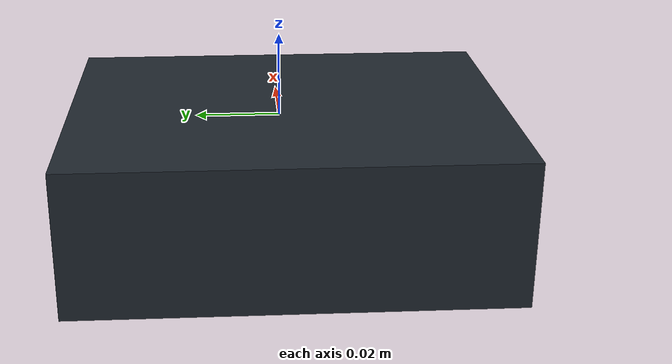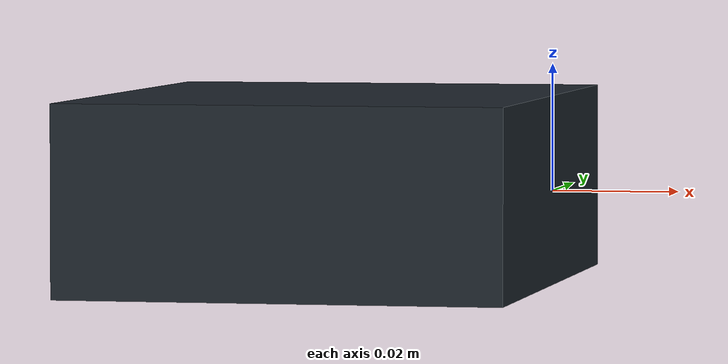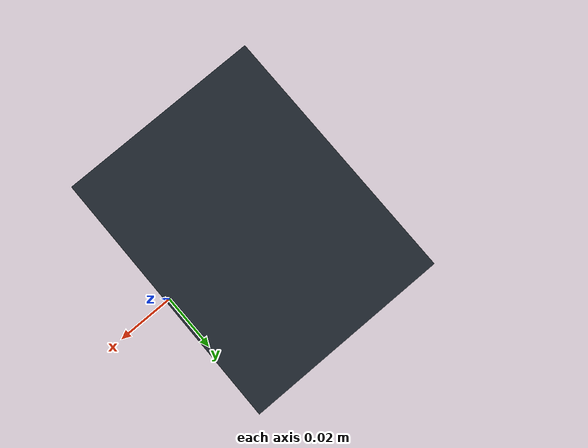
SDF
<?xml version="1.0"?>
<sdf version="1.8">
  <model name="perception_test_camera">
    <static>true</static>
    <link name="camera_link">
      <visual name="camera_body">
        <pose>-0.035 0 0 0 0 0</pose>
        <geometry>
          <box>
            <size>0.070 0.090 0.030</size>
          </box>
        </geometry>
        <material>
          <ambient>0.08 0.10 0.12 1</ambient>
          <diffuse>0.12 0.15 0.18 1</diffuse>
          <specular>0.25 0.25 0.25 1</specular>
        </material>
      </visual>

      <!-- Gazebo camera sensors look along their local +X axis. The model
           pose is supplied by perception_test_camera.launch.py, so the
           default pitch=+pi/2 points +X toward world -Z. -->
      <sensor name="rgbd_sensor" type="rgbd_camera">
        <pose>0 0 0 0 0 0</pose>
        <always_on>true</always_on>
        <update_rate>10.0</update_rate>
        <visualize>false</visualize>
        <topic>/perception_test_camera_gz</topic>
        <camera>
          <horizontal_fov>1.047</horizontal_fov>
          <image>
            <width>640</width>
            <height>480</height>
            <format>R8G8B8</format>
          </image>
          <clip>
            <near>0.1</near>
            <far>3.0</far>
          </clip>
        </camera>
      </sensor>
    </link>
  </model>
</sdf>
